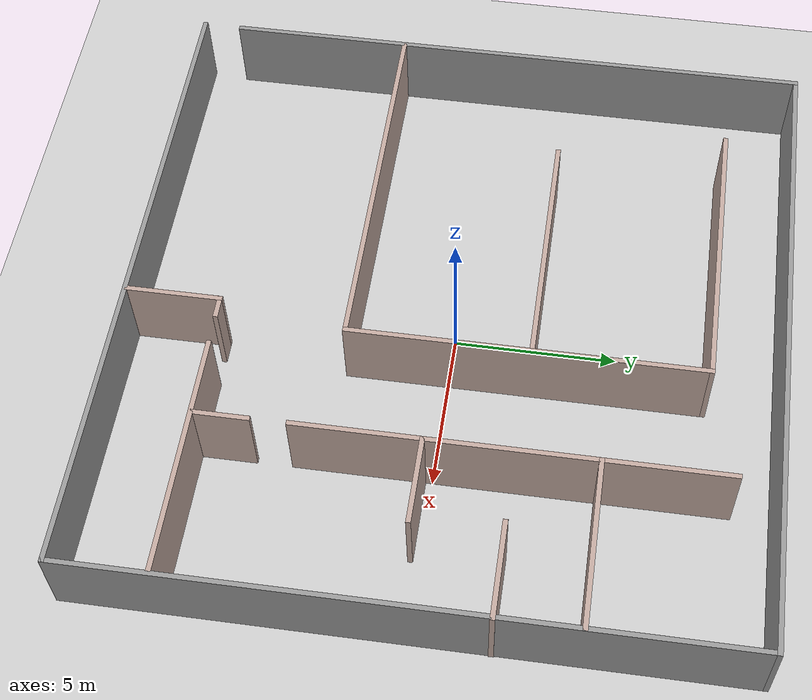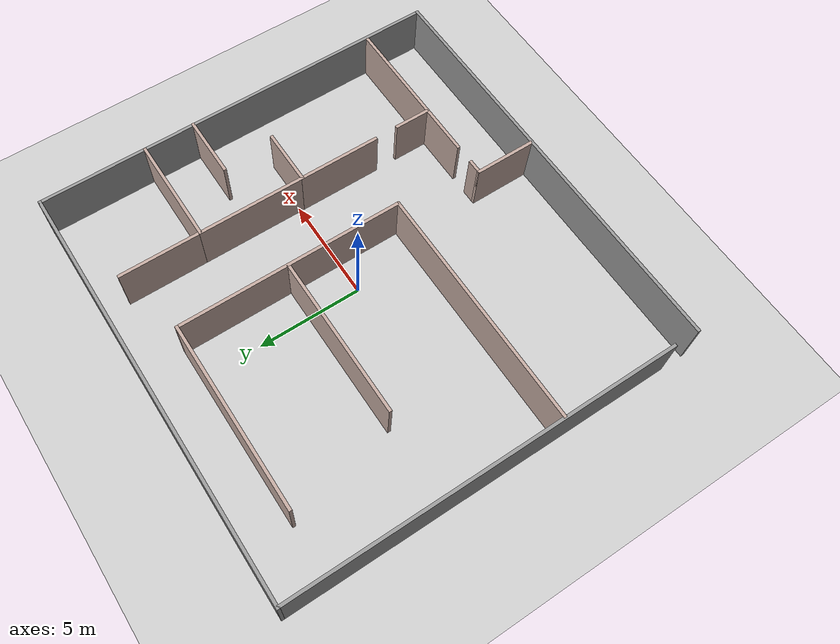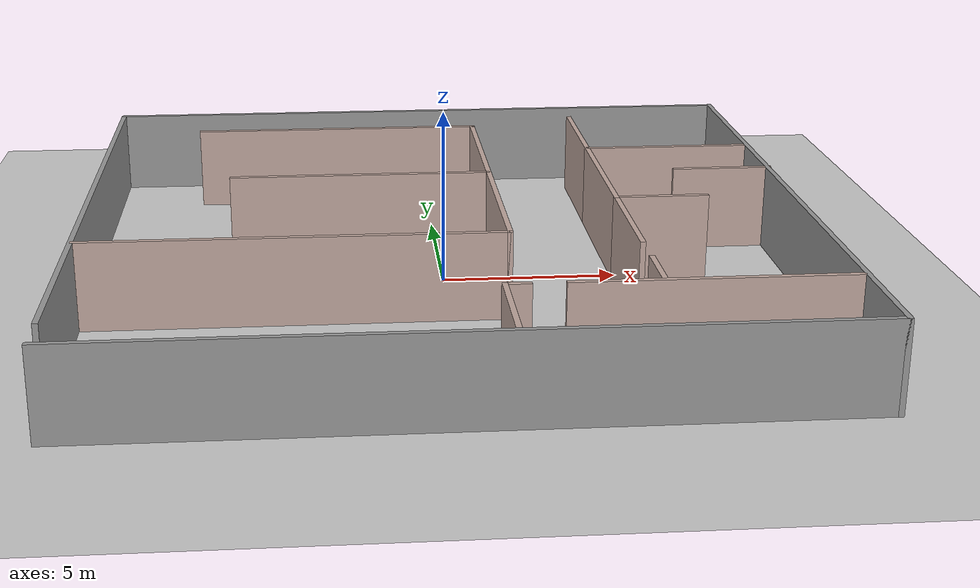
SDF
<sdf version="1.6">
 <world name="default">
  <light name="sun" type="directional">
   <cast_shadows>0</cast_shadows>
   <pose>0 0 10 0 -0 0</pose>
   <diffuse>0.8 0.8 0.8 1</diffuse>
   <specular>0.2 0.2 0.2 1</specular>
   <attenuation>
    <range>1000</range>
    <constant>0.9</constant>
    <linear>0.01</linear>
    <quadratic>0.001</quadratic>
   </attenuation>
   <direction>-0.5 0.1 -0.9</direction>
  </light>
  <model name="ground_plane">
   <static>1</static>
   <link name="link">
    <collision name="collision">
     <geometry><plane><normal>0 0 1</normal><size>100 100</size></plane></geometry>
     <surface><friction><ode><mu>100</mu><mu2>50</mu2></ode></friction></surface>
    </collision>
    <visual name="visual">
     <cast_shadows>0</cast_shadows>
     <geometry><plane><normal>0 0 1</normal><size>100 100</size></plane></geometry>
     <material>
      <script><uri>file://media/materials/scripts/gazebo.material</uri><name>Gazebo/Grey</name></script>
     </material>
    </visual>
   </link>
  </model>
  <gravity>0 0 -9.8</gravity>
  <magnetic_field>6e-06 2.3e-05 -4.2e-05</magnetic_field>
  <atmosphere type="adiabatic"/>
  <physics name="default_physics" default="0" type="ode">
   <max_step_size>0.001</max_step_size>
   <real_time_factor>1</real_time_factor>
   <real_time_update_rate>1000</real_time_update_rate>
  </physics>
  <scene><ambient>0.4 0.4 0.4 1</ambient><background>0.7 0.7 0.7 1</background><shadows>0</shadows></scene>
  <audio><device>default</device></audio>
  <spherical_coordinates>
   <surface_model>EARTH_WGS84</surface_model>
   <latitude_deg>0</latitude_deg>
   <longitude_deg>0</longitude_deg>
   <elevation>0</elevation>
   <heading_deg>0</heading_deg>
  </spherical_coordinates>
  <model name="PBL">
   <pose>0.00072 0.00769 0 0 -0 0</pose>
   <link name="Wall_11">
    <collision name="Wall_11_Collision">
     <geometry><box><size>7.5 0.15 2.5</size></box></geometry>
     <pose>0 0 1.25 0 -0 0</pose>
    </collision>
    <visual name="Wall_11_Visual">
     <pose>0 0 1.25 0 -0 0</pose>
     <geometry><box><size>7.5 0.15 2.5</size></box></geometry>
     <material>
      <script><uri>file://media/materials/scripts/gazebo.material</uri><name>Gazebo/Grey</name></script>
      <ambient>0.760784 0.662745 0.627451 1</ambient>
     </material>
     <meta><layer>0</layer></meta>
    </visual>
    <pose>6.23778 -6.99303 0 0 -0 0</pose>
   </link>
   <link name="Wall_16">
    <collision name="Wall_16_Collision">
     <geometry><box><size>4 0.15 2.5</size></box></geometry>
     <pose>0 0 1.25 0 -0 0</pose>
    </collision>
    <visual name="Wall_16_Visual">
     <pose>0 0 1.25 0 -0 0</pose>
     <geometry><box><size>4 0.15 2.5</size></box></geometry>
     <material>
      <script><uri>file://media/materials/scripts/gazebo.material</uri><name>Gazebo/Grey</name></script>
      <ambient>0.760784 0.662745 0.627451 1</ambient>
     </material>
     <meta><layer>0</layer></meta>
    </visual>
    <pose>4.92734 -2.20634 0 0 -0 1.5708</pose>
   </link>
   <link name="Wall_17">
    <collision name="Wall_17_Collision">
     <geometry><box><size>2.75 0.15 2.5</size></box></geometry>
     <pose>0 0 1.25 0 -0 0</pose>
    </collision>
    <visual name="Wall_17_Visual">
     <pose>0 0 1.25 0 -0 0</pose>
     <geometry><box><size>2.75 0.15 2.5</size></box></geometry>
     <material>
      <script><uri>file://media/materials/scripts/gazebo.material</uri><name>Gazebo/Grey</name></script>
      <ambient>0.760784 0.662745 0.627451 1</ambient>
     </material>
     <meta><layer>0</layer></meta>
    </visual>
    <pose>6.22734 -0.281341 0 0 -0 0</pose>
   </link>
   <link name="Wall_19">
    <collision name="Wall_19_Collision">
     <geometry><box><size>5.25 0.15 2.5</size></box></geometry>
     <pose>0 0 1.25 0 -0 0</pose>
    </collision>
    <visual name="Wall_19_Visual">
     <pose>0 0 1.25 0 -0 0</pose>
     <geometry><box><size>5.25 0.15 2.5</size></box></geometry>
     <material>
      <script><uri>file://media/materials/scripts/gazebo.material</uri><name>Gazebo/Grey</name></script>
      <ambient>0.760784 0.662745 0.627451 1</ambient>
     </material>
     <meta><layer>0</layer></meta>
    </visual>
    <pose>4.92734 2.26866 0 0 -0 1.5708</pose>
   </link>
   <link name="Wall_2">
    <collision name="Wall_2_Collision">
     <geometry><box><size>20.25 0.15 2.5</size></box></geometry>
     <pose>0 0 1.25 0 -0 0</pose>
    </collision>
    <visual name="Wall_2_Visual">
     <pose>0 0 1.25 0 -0 0</pose>
     <geometry><box><size>20.25 0.15 2.5</size></box></geometry>
     <material>
      <script><uri>file://media/materials/scripts/gazebo.material</uri><name>Gazebo/Grey</name></script>
      <ambient>0.180392 0.203922 0.211765 1</ambient>
     </material>
     <meta><layer>0</layer></meta>
    </visual>
    <pose>-0.011173 -9.925 0 0 -0 0</pose>
   </link>
   <link name="Wall_20">
    <collision name="Wall_20_Collision">
     <geometry><box><size>5.25 0.15 2.5</size></box></geometry>
     <pose>0 0 1.25 0 -0 0</pose>
    </collision>
    <visual name="Wall_20_Visual">
     <pose>0 0 1.25 0 -0 0</pose>
     <geometry><box><size>5.25 0.15 2.5</size></box></geometry>
     <material>
      <script><uri>file://media/materials/scripts/gazebo.material</uri><name>Gazebo/Grey</name></script>
      <ambient>0.760784 0.662745 0.627451 1</ambient>
     </material>
     <meta><layer>0</layer></meta>
    </visual>
    <pose>7.47734 4.81866 0 0 -0 0</pose>
   </link>
   <link name="Wall_24">
    <collision name="Wall_24_Collision">
     <geometry><box><size>3 0.15 2.5</size></box></geometry>
     <pose>0 0 1.25 0 -0 0</pose>
    </collision>
    <visual name="Wall_24_Visual">
     <pose>0 0 1.25 0 -0 0</pose>
     <geometry><box><size>3 0.15 2.5</size></box></geometry>
     <material>
      <script><uri>file://media/materials/scripts/gazebo.material</uri><name>Gazebo/Grey</name></script>
      <ambient>0.760784 0.662745 0.627451 1</ambient>
     </material>
     <meta><layer>0</layer></meta>
    </visual>
    <pose>8.63617 2.35911 0 0 -0 3.14159</pose>
   </link>
   <link name="Wall_26">
    <collision name="Wall_26_Collision">
     <geometry><box><size>3.9947 0.15 2.5</size></box></geometry>
     <pose>0 0 1.25 0 -0 0</pose>
    </collision>
    <visual name="Wall_26_Visual">
     <pose>0 0 1.25 0 -0 0</pose>
     <geometry><box><size>3.9947 0.15 2.5</size></box></geometry>
     <material>
      <script><uri>file://media/materials/scripts/gazebo.material</uri><name>Gazebo/Grey</name></script>
      <ambient>0.760784 0.662745 0.627451 1</ambient>
     </material>
     <meta><layer>0</layer></meta>
    </visual>
    <pose>4.92734 6.74101 0 0 -0 -1.5708</pose>
   </link>
   <link name="Wall_3">
    <collision name="Wall_3_Collision">
     <geometry><box><size>20 0.15 2.5</size></box></geometry>
     <pose>0 0 1.25 0 -0 0</pose>
    </collision>
    <visual name="Wall_3_Visual">
     <pose>0 0 1.25 0 -0 0</pose>
     <geometry><box><size>20 0.15 2.5</size></box></geometry>
     <material>
      <script><uri>file://media/materials/scripts/gazebo.material</uri><name>Gazebo/Grey</name></script>
      <ambient>0.180392 0.203922 0.211765 1</ambient>
     </material>
     <meta><layer>0</layer></meta>
    </visual>
    <pose>10.0388 0 0 0 -0 1.5708</pose>
   </link>
   <link name="Wall_32">
    <collision name="Wall_32_Collision">
     <geometry><box><size>1.75 0.15 2.5</size></box></geometry>
     <pose>0 0 1.25 0 -0 0</pose>
    </collision>
    <visual name="Wall_32_Visual">
     <pose>0 0 1.25 0 -0 0</pose>
     <geometry><box><size>1.75 0.15 2.5</size></box></geometry>
     <material>
      <script><uri>file://media/materials/scripts/gazebo.material</uri><name>Gazebo/Grey</name></script>
      <ambient>0.760784 0.662745 0.627451 1</ambient>
     </material>
     <meta><layer>0</layer></meta>
    </visual>
    <pose>4.93938 -6.13061 0 0 -0 -1.5708</pose>
   </link>
   <link name="Wall_34">
    <collision name="Wall_34_Collision">
     <geometry><box><size>11.6975 0.15 2.5</size></box></geometry>
     <pose>0 0 1.25 0 -0 0</pose>
    </collision>
    <visual name="Wall_34_Visual">
     <pose>0 0 1.25 0 -0 0</pose>
     <geometry><box><size>11.6975 0.15 2.5</size></box></geometry>
     <material>
      <script><uri>file://media/materials/scripts/gazebo.material</uri><name>Gazebo/Grey</name></script>
      <ambient>0.760784 0.662745 0.627451 1</ambient>
     </material>
     <meta><layer>0</layer></meta>
    </visual>
    <pose>-4.22123 -3.09591 0 0 -0 0</pose>
   </link>
   <link name="Wall_36">
    <collision name="Wall_36_Collision">
     <geometry><box><size>11 0.15 2.5</size></box></geometry>
     <pose>0 0 1.25 0 -0 0</pose>
    </collision>
    <visual name="Wall_36_Visual">
     <pose>0 0 1.25 0 -0 0</pose>
     <geometry><box><size>11 0.15 2.5</size></box></geometry>
     <material>
      <script><uri>file://media/materials/scripts/gazebo.material</uri><name>Gazebo/Grey</name></script>
      <ambient>0.760784 0.662745 0.627451 1</ambient>
     </material>
     <meta><layer>0</layer></meta>
    </visual>
    <pose>1.55253 2.32909 0 0 -0 1.5708</pose>
   </link>
   <link name="Wall_37">
    <collision name="Wall_37_Collision">
     <geometry><box><size>9 0.15 2.5</size></box></geometry>
     <pose>0 0 1.25 0 -0 0</pose>
    </collision>
    <visual name="Wall_37_Visual">
     <pose>0 0 1.25 0 -0 0</pose>
     <geometry><box><size>9 0.15 2.5</size></box></geometry>
     <material>
      <script><uri>file://media/materials/scripts/gazebo.material</uri><name>Gazebo/Grey</name></script>
      <ambient>0.760784 0.662745 0.627451 1</ambient>
     </material>
     <meta><layer>0</layer></meta>
    </visual>
    <pose>-2.87247 7.75409 0 0 -0 3.14159</pose>
   </link>
   <link name="Wall_39">
    <collision name="Wall_39_Collision">
     <geometry><box><size>7.75 0.15 2.5</size></box></geometry>
     <pose>0 0 1.25 0 -0 0</pose>
    </collision>
    <visual name="Wall_39_Visual">
     <pose>0 0 1.25 0 -0 0</pose>
     <geometry><box><size>7.75 0.15 2.5</size></box></geometry>
     <material>
      <script><uri>file://media/materials/scripts/gazebo.material</uri><name>Gazebo/Grey</name></script>
      <ambient>0.760784 0.662745 0.627451 1</ambient>
     </material>
     <meta><layer>0</layer></meta>
    </visual>
    <pose>-2.29145 2.4726 0 0 -0 0</pose>
   </link>
   <link name="Wall_4">
    <collision name="Wall_4_Collision">
     <geometry><box><size>20.25 0.15 2.5</size></box></geometry>
     <pose>0 0 1.25 0 -0 0</pose>
    </collision>
    <visual name="Wall_4_Visual">
     <pose>0 0 1.25 0 -0 0</pose>
     <geometry><box><size>20.25 0.15 2.5</size></box></geometry>
     <material>
      <script><uri>file://media/materials/scripts/gazebo.material</uri><name>Gazebo/Grey</name></script>
      <ambient>0.180392 0.203922 0.211765 1</ambient>
     </material>
     <meta><layer>0</layer></meta>
    </visual>
    <pose>-0.011173 9.925 0 0 -0 3.14159</pose>
   </link>
   <link name="Wall_5">
    <collision name="Wall_5_Collision">
     <geometry><box><size>18.75 0.15 2.5</size></box></geometry>
     <pose>0 0 1.25 0 -0 0</pose>
    </collision>
    <visual name="Wall_5_Visual">
     <pose>0 0 1.25 0 -0 0</pose>
     <geometry><box><size>18.75 0.15 2.5</size></box></geometry>
     <material>
      <script><uri>file://media/materials/scripts/gazebo.material</uri><name>Gazebo/Grey</name></script>
      <ambient>0.180392 0.203922 0.211765 1</ambient>
     </material>
     <meta><layer>0</layer></meta>
    </visual>
    <pose>-10.0612 0.625 0 0 -0 -1.5708</pose>
   </link>
   <link name="Wall_7">
    <collision name="Wall_7_Collision">
     <geometry><box><size>3 0.15 2.5</size></box></geometry>
     <pose>0 0 1.25 0 -0 0</pose>
    </collision>
    <visual name="Wall_7_Visual">
     <pose>0 0 1.25 0 -0 0</pose>
     <geometry><box><size>3 0.15 2.5</size></box></geometry>
     <material>
      <script><uri>file://media/materials/scripts/gazebo.material</uri><name>Gazebo/Grey</name></script>
      <ambient>0.760784 0.662745 0.627451 1</ambient>
     </material>
     <meta><layer>0</layer></meta>
    </visual>
    <pose>0.959733 -8.42602 0 0 -0 1.5708</pose>
   </link>
   <link name="Wall_8">
    <collision name="Wall_8_Collision">
     <geometry><box><size>0.75 0.15 2.5</size></box></geometry>
     <pose>0 0 1.25 0 -0 0</pose>
    </collision>
    <visual name="Wall_8_Visual">
     <pose>0 0 1.25 0 -0 0</pose>
     <geometry><box><size>0.75 0.15 2.5</size></box></geometry>
     <material>
      <script><uri>file://media/materials/scripts/gazebo.material</uri><name>Gazebo/Grey</name></script>
      <ambient>0.760784 0.662745 0.627451 1</ambient>
     </material>
     <meta><layer>0</layer></meta>
    </visual>
    <pose>1.25973 -7.00102 0 0 -0 0</pose>
   </link>
   <static>1</static>
  </model>
 </world>
</sdf>
